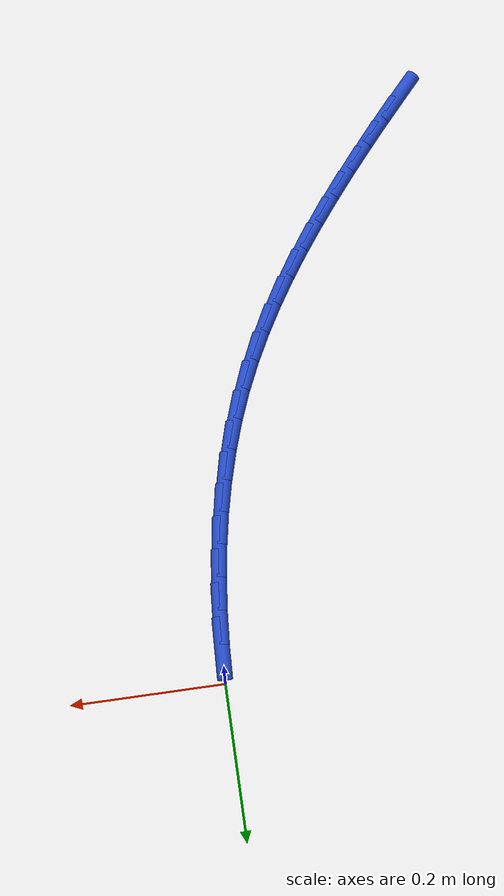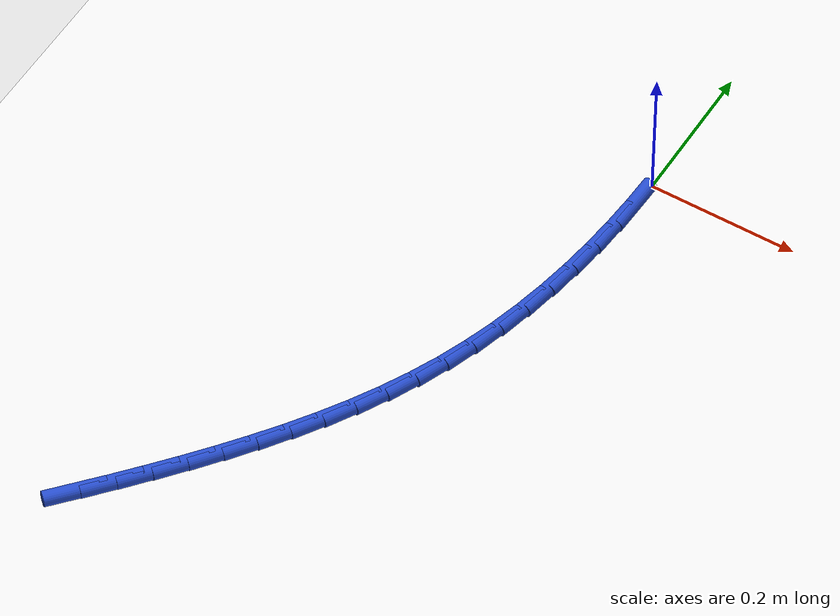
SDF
<sdf version="1.6">
 <world name="default">
  <model name="ground_plane">
   <static>1</static>
   <link name="link">
    <collision name="collision">
     <geometry><plane><normal>0 0 1</normal><size>100 100</size></plane></geometry>
     <surface><friction><ode><mu>100</mu><mu2>50</mu2></ode></friction></surface>
    </collision>
    <visual name="visual">
     <cast_shadows>0</cast_shadows>
     <geometry><plane><normal>0 0 1</normal><size>100 100</size></plane></geometry>
     <material>
      <script><uri>file://media/materials/scripts/gazebo.material</uri><name>Gazebo/WhiteGlow</name></script>
     </material>
    </visual>
   </link>
  </model>
  <model name="line">
   <link name="link_140">
    <pose>-0.3477284011868127 -0.7694840583868816 0.01 0 1.57 0.841985260851144</pose>
    <collision name="collision">
     <geometry><cylinder><radius>0.01</radius><length>0.08</length></cylinder></geometry>
    </collision>
    <visual name="visual">
     <material>
      <script><name>Gazebo/Blue</name><uri>file://media/materials/scripts/gazebo.material</uri></script>
     </material>
     <geometry><cylinder><radius>0.01</radius><length>0.08</length></cylinder></geometry>
    </visual>
   </link>
   <link name="link_141">
    <pose>-0.3177894731711286 -0.735949512028879 0.01 0 1.57 0.8597686332669012</pose>
    <collision name="collision">
     <geometry><cylinder><radius>0.01</radius><length>0.08</length></cylinder></geometry>
    </collision>
    <visual name="visual">
     <material>
      <script><name>Gazebo/Blue</name><uri>file://media/materials/scripts/gazebo.material</uri></script>
     </material>
     <geometry><cylinder><radius>0.01</radius><length>0.08</length></cylinder></geometry>
    </visual>
   </link>
   <link name="link_142">
    <pose>-0.2885583828730212 -0.7020118515594105 0.01 0 1.57 0.8742247078081734</pose>
    <collision name="collision">
     <geometry><cylinder><radius>0.01</radius><length>0.08</length></cylinder></geometry>
    </collision>
    <visual name="visual">
     <material>
      <script><name>Gazebo/Blue</name><uri>file://media/materials/scripts/gazebo.material</uri></script>
     </material>
     <geometry><cylinder><radius>0.01</radius><length>0.08</length></cylinder></geometry>
    </visual>
   </link>
   <link name="link_143">
    <pose>-0.2600331043360114 -0.6679088410814424 0.01 0 1.57 0.8918833381202012</pose>
    <collision name="collision">
     <geometry><cylinder><radius>0.01</radius><length>0.08</length></cylinder></geometry>
    </collision>
    <visual name="visual">
     <material>
      <script><name>Gazebo/Blue</name><uri>file://media/materials/scripts/gazebo.material</uri></script>
     </material>
     <geometry><cylinder><radius>0.01</radius><length>0.08</length></cylinder></geometry>
    </visual>
   </link>
   <link name="link_144">
    <pose>-0.23234572716795623 -0.6335940877844257 0.01 0 1.57 0.9138873479258649</pose>
    <collision name="collision">
     <geometry><cylinder><radius>0.01</radius><length>0.08</length></cylinder></geometry>
    </collision>
    <visual name="visual">
     <material>
      <script><name>Gazebo/Blue</name><uri>file://media/materials/scripts/gazebo.material</uri></script>
     </material>
     <geometry><cylinder><radius>0.01</radius><length>0.08</length></cylinder></geometry>
    </visual>
   </link>
   <link name="link_145">
    <pose>-0.20564961086314026 -0.5989761333554746 0.01 0 1.57 0.9403622787184244</pose>
    <collision name="collision">
     <geometry><cylinder><radius>0.01</radius><length>0.08</length></cylinder></geometry>
    </collision>
    <visual name="visual">
     <material>
      <script><name>Gazebo/Blue</name><uri>file://media/materials/scripts/gazebo.material</uri></script>
     </material>
     <geometry><cylinder><radius>0.01</radius><length>0.08</length></cylinder></geometry>
    </visual>
   </link>
   <link name="link_146">
    <pose>-0.1800981149158474 -0.5639635194817028 0.01 0 1.57 0.9714197084803996</pose>
    <collision name="collision">
     <geometry><cylinder><radius>0.01</radius><length>0.08</length></cylinder></geometry>
    </collision>
    <visual name="visual">
     <material>
      <script><name>Gazebo/Blue</name><uri>file://media/materials/scripts/gazebo.material</uri></script>
     </material>
     <geometry><cylinder><radius>0.01</radius><length>0.08</length></cylinder></geometry>
    </visual>
   </link>
   <link name="link_147">
    <pose>-0.1558445988203632 -0.528464787850226 0.01 0 1.57 1.007140503253421</pose>
    <collision name="collision">
     <geometry><cylinder><radius>0.01</radius><length>0.08</length></cylinder></geometry>
    </collision>
    <visual name="visual">
     <material>
      <script><name>Gazebo/Blue</name><uri>file://media/materials/scripts/gazebo.material</uri></script>
     </material>
     <geometry><cylinder><radius>0.01</radius><length>0.08</length></cylinder></geometry>
    </visual>
   </link>
   <link name="link_148">
    <pose>-0.13304242207097153 -0.4923884801481573 0.01 0 1.57 1.0475538989336077</pose>
    <collision name="collision">
     <geometry><cylinder><radius>0.01</radius><length>0.08</length></cylinder></geometry>
    </collision>
    <visual name="visual">
     <material>
      <script><name>Gazebo/Blue</name><uri>file://media/materials/scripts/gazebo.material</uri></script>
     </material>
     <geometry><cylinder><radius>0.01</radius><length>0.08</length></cylinder></geometry>
    </visual>
   </link>
   <link name="link_149">
    <pose>-0.11184494416195685 -0.4556431380626114 0.01 0 1.57 1.0926130710425166</pose>
    <collision name="collision">
     <geometry><cylinder><radius>0.01</radius><length>0.08</length></cylinder></geometry>
    </collision>
    <visual name="visual">
     <material>
      <script><name>Gazebo/Blue</name><uri>file://media/materials/scripts/gazebo.material</uri></script>
     </material>
     <geometry><cylinder><radius>0.01</radius><length>0.08</length></cylinder></geometry>
    </visual>
   </link>
   <link name="link_150">
    <pose>-0.09240552458760373 -0.4181373032807025 0.01 0 1.57 1.142168507001337</pose>
    <collision name="collision">
     <geometry><cylinder><radius>0.01</radius><length>0.08</length></cylinder></geometry>
    </collision>
    <visual name="visual">
     <material>
      <script><name>Gazebo/Blue</name><uri>file://media/materials/scripts/gazebo.material</uri></script>
     </material>
     <geometry><cylinder><radius>0.01</radius><length>0.08</length></cylinder></geometry>
    </visual>
   </link>
   <link name="link_151">
    <pose>-0.07487750686048596 -0.3797795280915126 0.01 0 1.57 1.1946323133747618</pose>
    <collision name="collision">
     <geometry><cylinder><radius>0.01</radius><length>0.08</length></cylinder></geometry>
    </collision>
    <visual name="visual">
     <material>
      <script><name>Gazebo/Blue</name><uri>file://media/materials/scripts/gazebo.material</uri></script>
     </material>
     <geometry><cylinder><radius>0.01</radius><length>0.08</length></cylinder></geometry>
    </visual>
   </link>
   <link name="link_152">
    <pose>-0.05936703271254203 -0.3405096775661882 0.01 0 1.57 1.2455262115507402</pose>
    <collision name="collision">
     <geometry><cylinder><radius>0.01</radius><length>0.08</length></cylinder></geometry>
    </collision>
    <visual name="visual">
     <material>
      <script><name>Gazebo/Blue</name><uri>file://media/materials/scripts/gazebo.material</uri></script>
     </material>
     <geometry><cylinder><radius>0.01</radius><length>0.08</length></cylinder></geometry>
    </visual>
   </link>
   <link name="link_153">
    <pose>-0.04582923891611731 -0.30036779065334385 0.01 0 1.57 1.293874329395189</pose>
    <collision name="collision">
     <geometry><cylinder><radius>0.01</radius><length>0.08</length></cylinder></geometry>
    </collision>
    <visual name="visual">
     <material>
      <script><name>Gazebo/Blue</name><uri>file://media/materials/scripts/gazebo.material</uri></script>
     </material>
     <geometry><cylinder><radius>0.01</radius><length>0.08</length></cylinder></geometry>
    </visual>
   </link>
   <link name="link_154">
    <pose>-0.03418912865950128 -0.2594138963599692 0.01 0 1.57 1.3396084896434552</pose>
    <collision name="collision">
     <geometry><cylinder><radius>0.01</radius><length>0.08</length></cylinder></geometry>
    </collision>
    <visual name="visual">
     <material>
      <script><name>Gazebo/Blue</name><uri>file://media/materials/scripts/gazebo.material</uri></script>
     </material>
     <geometry><cylinder><radius>0.01</radius><length>0.08</length></cylinder></geometry>
    </visual>
   </link>
   <link name="link_155">
    <pose>-0.02437170513098346 -0.21770802369305367 0.01 0 1.57 1.382712343398861</pose>
    <collision name="collision">
     <geometry><cylinder><radius>0.01</radius><length>0.08</length></cylinder></geometry>
    </collision>
    <visual name="visual">
     <material>
      <script><name>Gazebo/Blue</name><uri>file://media/materials/scripts/gazebo.material</uri></script>
     </material>
     <geometry><cylinder><radius>0.01</radius><length>0.08</length></cylinder></geometry>
    </visual>
   </link>
   <link name="link_156">
    <pose>-0.01630197151885323 -0.17531020165958633 0.01 0 1.57 1.4232117152759136</pose>
    <collision name="collision">
     <geometry><cylinder><radius>0.01</radius><length>0.08</length></cylinder></geometry>
    </collision>
    <visual name="visual">
     <material>
      <script><name>Gazebo/Blue</name><uri>file://media/materials/scripts/gazebo.material</uri></script>
     </material>
     <geometry><cylinder><radius>0.01</radius><length>0.08</length></cylinder></geometry>
    </visual>
   </link>
   <link name="link_157">
    <pose>-0.009904931011400359 -0.13228045926655815 0.01 0 1.57 1.4611650906644724</pose>
    <collision name="collision">
     <geometry><cylinder><radius>0.01</radius><length>0.08</length></cylinder></geometry>
    </collision>
    <visual name="visual">
     <material>
      <script><name>Gazebo/Blue</name><uri>file://media/materials/scripts/gazebo.material</uri></script>
     </material>
     <geometry><cylinder><radius>0.01</radius><length>0.08</length></cylinder></geometry>
    </visual>
   </link>
   <link name="link_158">
    <pose>-0.0051055867969141844 -0.08867882552095802 0.01 0 1.57 1.4966548742805406</pose>
    <collision name="collision">
     <geometry><cylinder><radius>0.01</radius><length>0.08</length></cylinder></geometry>
    </collision>
    <visual name="visual">
     <material>
      <script><name>Gazebo/Blue</name><uri>file://media/materials/scripts/gazebo.material</uri></script>
     </material>
     <geometry><cylinder><radius>0.01</radius><length>0.08</length></cylinder></geometry>
    </visual>
   </link>
   <link name="link_159">
    <pose>-0.0018289420636842142 -0.04456532942977549 0.01 0 1.57 1.529779771391215</pose>
    <collision name="collision">
     <geometry><cylinder><radius>0.01</radius><length>0.08</length></cylinder></geometry>
    </collision>
    <visual name="visual">
     <material>
      <script><name>Gazebo/Blue</name><uri>file://media/materials/scripts/gazebo.material</uri></script>
     </material>
     <geometry><cylinder><radius>0.01</radius><length>0.08</length></cylinder></geometry>
    </visual>
   </link>
  </model>
 </world>
</sdf>
